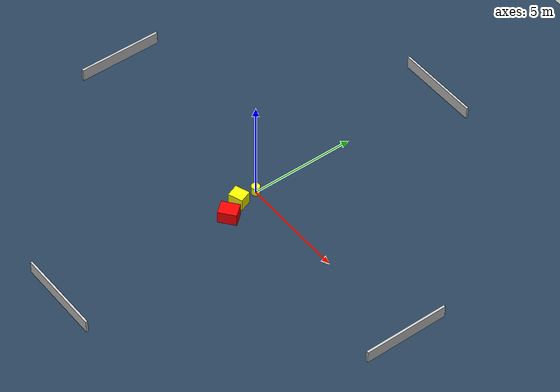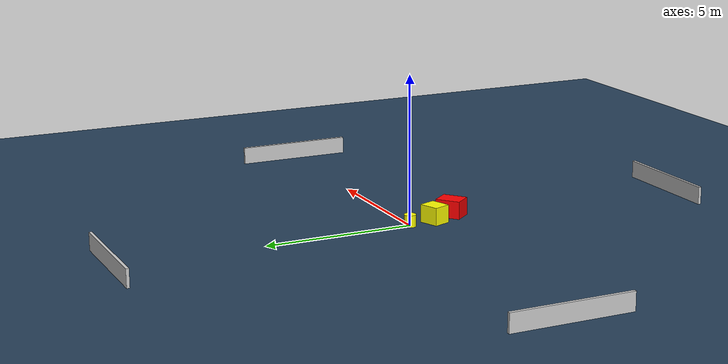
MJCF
<?xml version="1.0" ?>
<mujoco model="generated_environment">
  <option timestep="0.01" integrator="RK4" cone="elliptic"/>
  <default>
    <geom density="1"/>
  </default>
  <asset>
    <texture builtin="gradient" height="3072" name="skybox" rgb1="0.3 0.5 0.7" rgb2="0 0 0" type="skybox" width="512"/>
    <texture builtin="checker" height="300" name="groundplane" rgb1="0.2 0.3 0.4" rgb2="0.1 0.2 0.3" type="2d" width="300"/>
    <material name="groundplane" reflectance="0.2" texrepeat="5 5" texture="groundplane"/>
  </asset>
  <worldbody>
    <light dir="0 0 -1" directional="true" pos="0 0 1.5"/>
    <geom condim="3" friction="0.5 0.005 0.001" material="groundplane" name="floor" pos="0 0 0" size="0 0 0.05" type="plane"/>
    <body name="walls">
      <geom name="wall_1" condim="4" pos="-10.0 0.0 0.3" rgba="0.800000011920929 0.800000011920929 0.800000011920929 1.0" size="0.05 2.0 0.3" type="box"/>
      <geom name="wall_2" condim="4" pos="10.0 0.0 0.3" rgba="0.800000011920929 0.800000011920929 0.800000011920929 1.0" size="0.05 2.0 0.3" type="box"/>
      <geom name="wall_3" condim="4" pos="0.0 -10.0 0.3" rgba="0.800000011920929 0.800000011920929 0.800000011920929 1.0" size="2.0 0.05 0.3" type="box"/>
      <geom name="wall_4" condim="4" pos="0.0 10.0 0.3" rgba="0.800000011920929 0.800000011920929 0.800000011920929 1.0" size="2.0 0.05 0.3" type="box"/>
    </body>
    <body name="robot">
      <joint name="joint_x" type="slide" pos="0 0 0" axis="1 0 0"/>
      <joint name="joint_y" type="slide" pos="0 0 0" axis="0 1 0"/>
      <geom name="robot" type="cylinder" pos="0.0 0.0 0.2" size="0.2 0.2 0.0" mass="5.0" friction="1.0 0.005 0.0001" condim="4" rgba="1.0 1.0 0.0 1.0"/>
    </body>
    <body name="obstacle_1_movable">
      <geom name="obstacle_1_movable" condim="4" pos="0.0540925875262179 -0.9195734923244004 0.3" euler="0 0 20.376910540783125" friction="0.0 0.005 0.001" rgba="1.0 1.0 0.0 1.0" size="0.34614520350620337 0.2979476306480442 0.3" type="box" mass="0.1"/>
      <joint type="free"/>
    </body>
    <body name="obstacle_2_static">
      <geom name="obstacle_2_static" condim="4" pos="0.49231276243600963 -1.769284750406073 0.3" euler="0 0 309.228091742103" friction="0.0 0.005 0.001" rgba="1.0 0.0 0.0 1.0" size="0.3388291756390087 0.42025387482709514 0.3" type="box"/>
    </body>
  </worldbody>
  <actuator>
    <motor name="actuator_x" joint="joint_x" gear="1" ctrlrange="-1 1"/>
    <motor name="actuator_y" joint="joint_y" gear="1" ctrlrange="-1 1"/>
  </actuator>
</mujoco>
